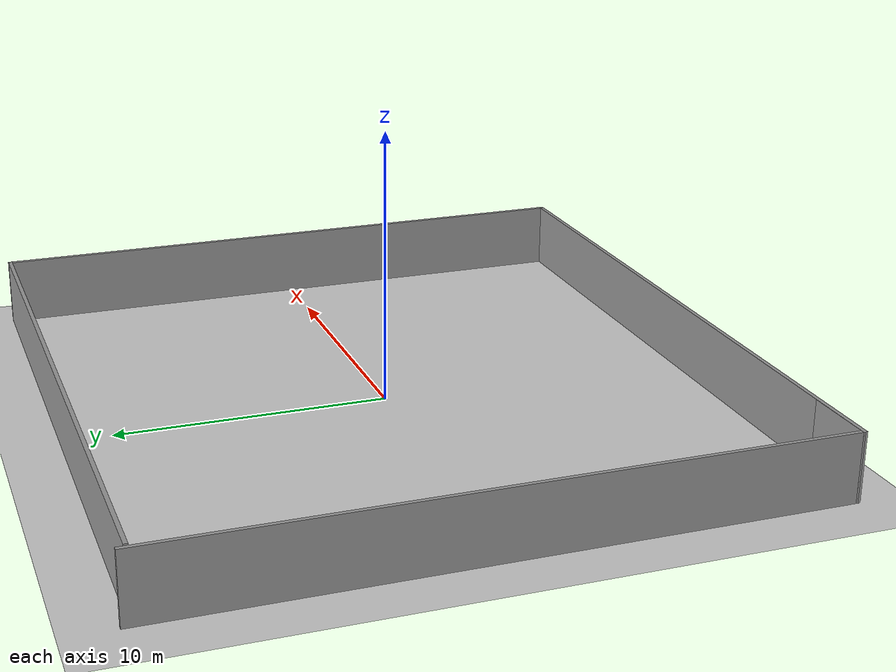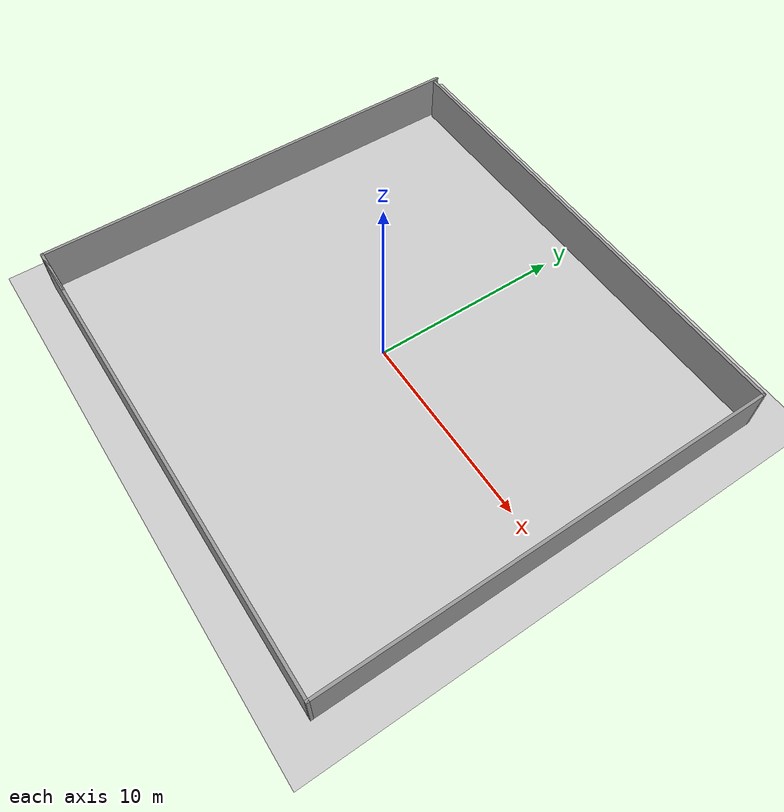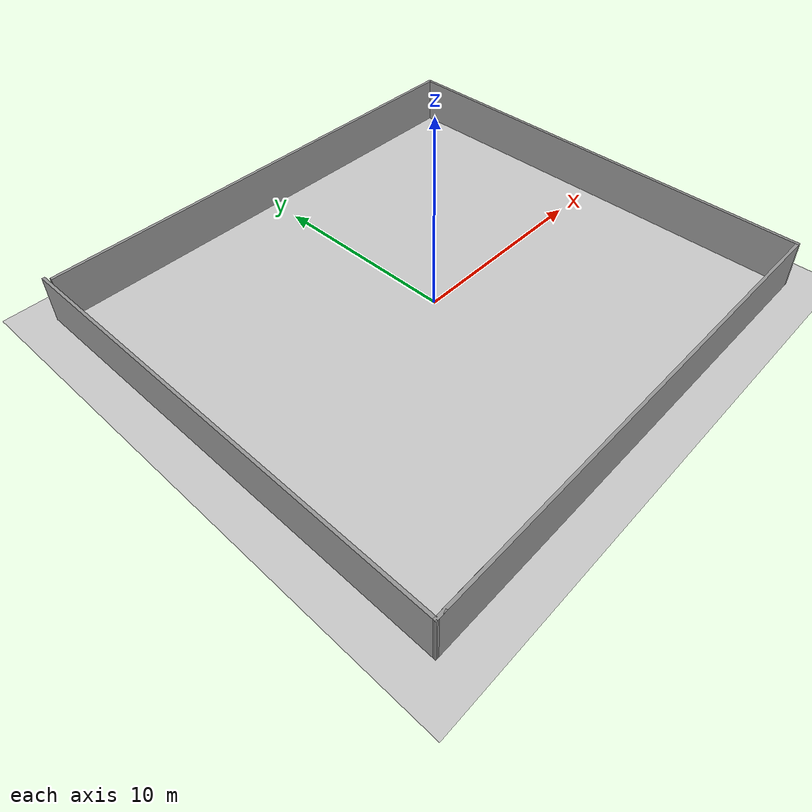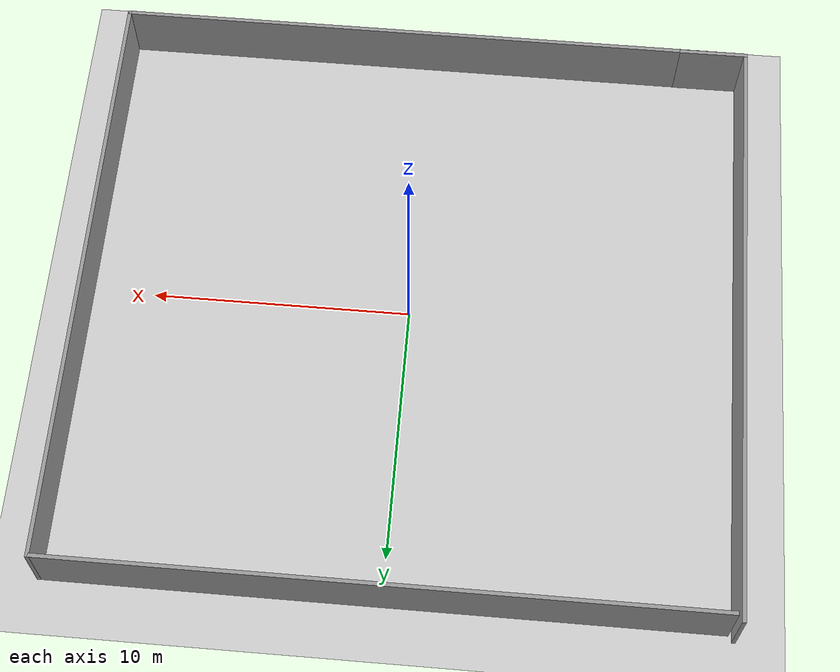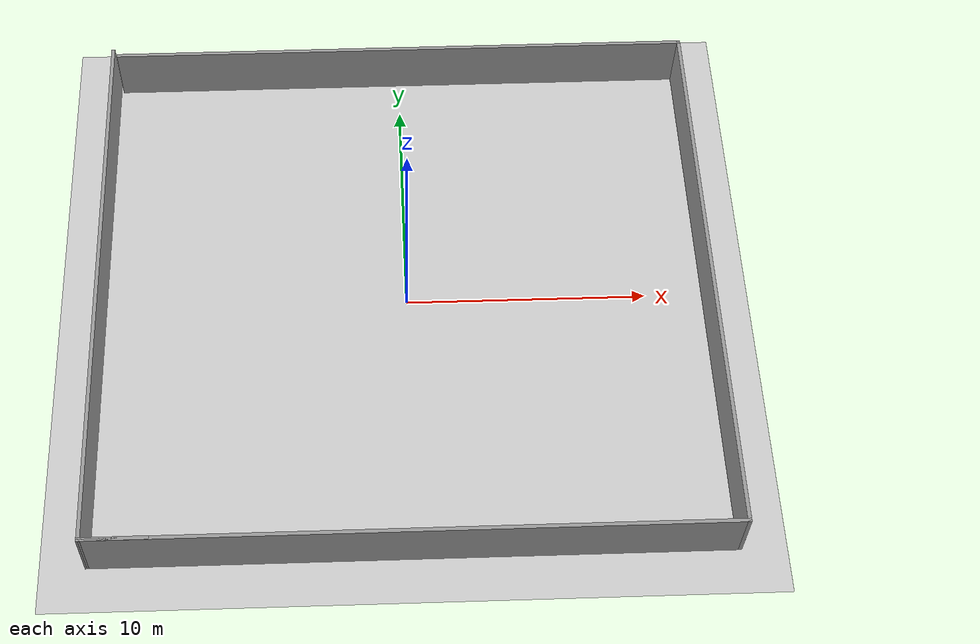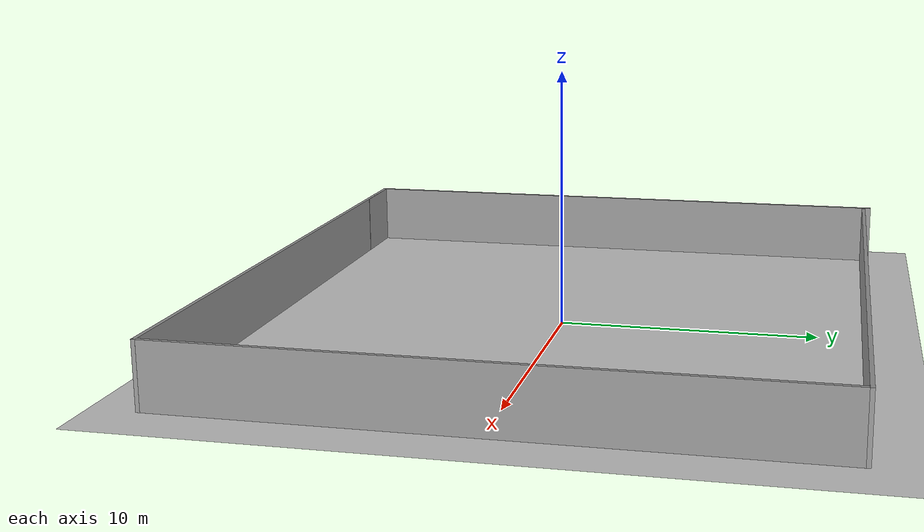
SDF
<sdf version="1.6">
 <world name="default">
  <light name="sun" type="directional">
   <pose>0 0 10 0 -0 0</pose>
   <diffuse>0.8 0.8 0.8 1</diffuse>
   <specular>0.1 0.1 0.1 1</specular>
   <attenuation>
    <range>1000</range>
    <constant>0.9</constant>
    <linear>0.01</linear>
    <quadratic>0.001</quadratic>
   </attenuation>
   <direction>-0.5 0.5 -1</direction>
  </light>
  <model name="ground_plane">
   <static>1</static>
   <link name="link">
    <collision name="collision">
     <geometry><plane><normal>0 0 1</normal><size>100 100</size></plane></geometry>
     <surface><friction><ode><mu>100</mu><mu2>50</mu2></ode></friction></surface>
    </collision>
    <visual name="visual">
     <cast_shadows>0</cast_shadows>
     <geometry><plane><normal>0 0 1</normal><size>100 100</size></plane></geometry>
     <material>
      <script><uri>file://media/materials/scripts/gazebo.material</uri><name>Gazebo/Grey</name></script>
     </material>
    </visual>
   </link>
  </model>
  <gravity>0 0 -9.8</gravity>
  <magnetic_field>6e-06 2.3e-05 -4.2e-05</magnetic_field>
  <atmosphere type="adiabatic"/>
  <physics name="default_physics" default="0" type="ode">
   <max_step_size>0.001</max_step_size>
   <real_time_factor>1</real_time_factor>
   <real_time_update_rate>1000</real_time_update_rate>
  </physics>
  <scene><ambient>0.4 0.4 0.4 1</ambient><background>0.7 0.7 0.7 1</background><shadows>1</shadows></scene>
  <spherical_coordinates>
   <surface_model>EARTH_WGS84</surface_model>
   <latitude_deg>0</latitude_deg>
   <longitude_deg>0</longitude_deg>
   <elevation>0</elevation>
   <heading_deg>0</heading_deg>
  </spherical_coordinates>
  <model name="Untitled">
   <pose>-0.09234 0.203861 0 0 -0 0</pose>
   <link name="Wall_0">
    <collision name="Wall_0_Collision">
     <geometry><box><size>23.75 0.15 2.5</size></box></geometry>
     <pose>0 0 1.25 0 -0 0</pose>
    </collision>
    <visual name="Wall_0_Visual">
     <pose>0 0 1.25 0 -0 0</pose>
     <geometry><box><size>23.75 0.15 2.5</size></box></geometry>
     <material>
      <script><uri>file://media/materials/scripts/gazebo.material</uri><name>Gazebo/Grey</name></script>
      <ambient>1 1 1 1</ambient>
     </material>
    </visual>
    <pose>-12.5497 0.000139 0 0 0 -1.5708</pose>
   </link>
   <link name="Wall_2">
    <collision name="Wall_2_Collision">
     <geometry><box><size>2.71049 0.15 2.5</size></box></geometry>
     <pose>0 0 1.25 0 -0 0</pose>
    </collision>
    <visual name="Wall_2_Visual">
     <pose>0 0 1.25 0 -0 0</pose>
     <geometry><box><size>2.71049 0.15 2.5</size></box></geometry>
     <material>
      <script><uri>file://media/materials/scripts/gazebo.material</uri><name>Gazebo/Grey</name></script>
      <ambient>1 1 1 1</ambient>
     </material>
    </visual>
    <pose>-11.2696 -11.7951 0 0 0 -3.13788</pose>
   </link>
   <link name="Wall_3">
    <collision name="Wall_3_Collision">
     <geometry><box><size>25.25 0.15 2.5</size></box></geometry>
     <pose>0 0 1.25 0 -0 0</pose>
    </collision>
    <visual name="Wall_3_Visual">
     <pose>0 0 1.25 0 -0 0</pose>
     <geometry><box><size>25.25 0.15 2.5</size></box></geometry>
     <material>
      <script><uri>file://media/materials/scripts/gazebo.material</uri><name>Gazebo/Grey</name></script>
      <ambient>1 1 1 1</ambient>
     </material>
    </visual>
    <pose>0.000138 -11.7996 0 0 -0 1.8e-05</pose>
   </link>
   <link name="Wall_4">
    <collision name="Wall_4_Collision">
     <geometry><box><size>23.5 0.15 2.5</size></box></geometry>
     <pose>0 0 1.25 0 -0 0</pose>
    </collision>
    <visual name="Wall_4_Visual">
     <pose>0 0 1.25 0 -0 0</pose>
     <geometry><box><size>23.5 0.15 2.5</size></box></geometry>
     <material>
      <script><uri>file://media/materials/scripts/gazebo.material</uri><name>Gazebo/Grey</name></script>
      <ambient>1 1 1 1</ambient>
     </material>
    </visual>
    <pose>12.5499 -0.124398 0 0 -0 1.5708</pose>
   </link>
   <link name="Wall_5">
    <collision name="Wall_5_Collision">
     <geometry><box><size>25 0.15 2.5</size></box></geometry>
     <pose>0 0 1.25 0 -0 0</pose>
    </collision>
    <visual name="Wall_5_Visual">
     <pose>0 0 1.25 0 -0 0</pose>
     <geometry><box><size>25 0.15 2.5</size></box></geometry>
     <material>
      <script><uri>file://media/materials/scripts/gazebo.material</uri><name>Gazebo/Grey</name></script>
      <ambient>1 1 1 1</ambient>
     </material>
    </visual>
    <pose>0.124935 11.5506 0 0 -0 3.14159</pose>
   </link>
   <static>1</static>
  </model>
 </world>
</sdf>
